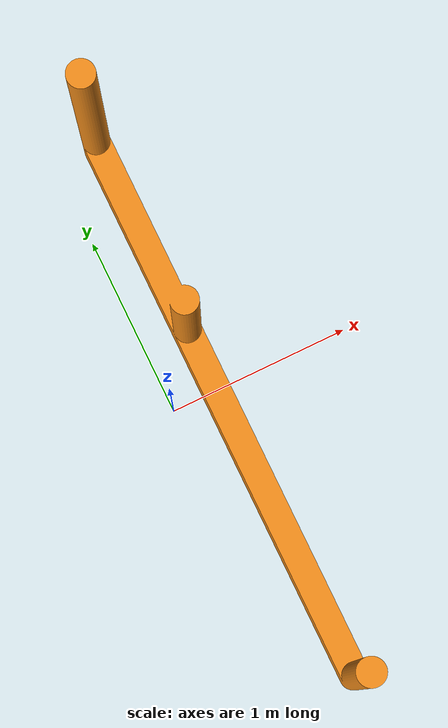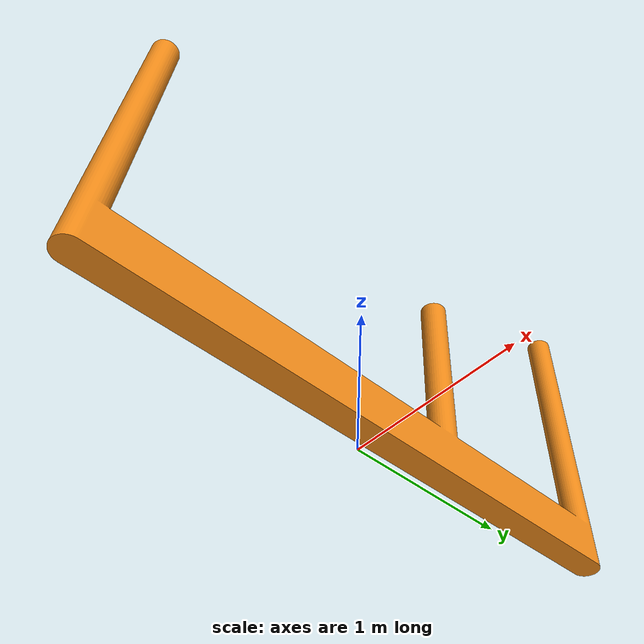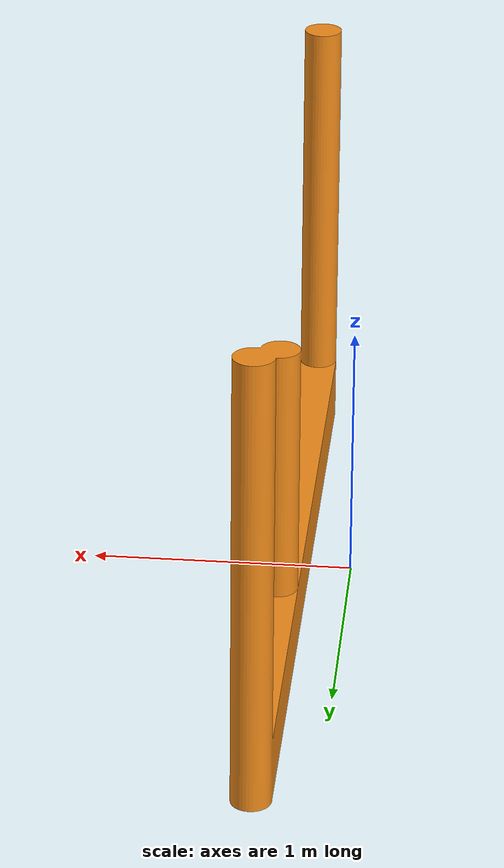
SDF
<?xml version="1.0" ?>
<sdf version="1.6">
  <model name="ambulance">
    <static>true</static>
    <link name="link">
      <collision name="collision">
        <geometry>
          <mesh>
            <scale>1 1 1</scale>
            <uri>model://gate/meshes/gate.dae</uri>
          </mesh>
        </geometry>
      </collision>
      <visual name="visual">
        <geometry>
          <mesh>
            <scale>1 1 1</scale>
            <uri>model://gate/meshes/gate.dae</uri>
          </mesh>
        </geometry>
	<material>
	  <script>
            <uri>file://media/materials/scripts/gazebo.material</uri>
	    <name>Gazebo/Orange</name>
	  </script>
	</material>
      </visual>
    </link>
  </model>
</sdf>
